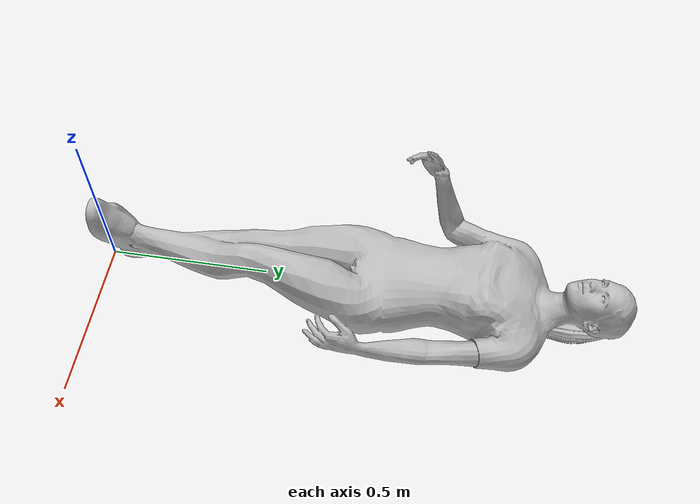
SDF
<sdf version="1.5">
    <model name="casual_female">
        <static>true</static>
        <link name="link">
            <collision name="box">
                <pose>0 0 0.9 0 0 0</pose>
                <geometry>
                    <box>
                        <size>0.76 0.33 1.77</size>
                    </box>
                </geometry>
            </collision>
            <visual name="visual">
                <pose>0 0 0.02 0.04 0 0</pose>
                <geometry>
                    <mesh>
                        <uri>meshes/casual_female.obj</uri>
                    </mesh>
                </geometry>
            </visual>
        </link>
    </model>
</sdf>
